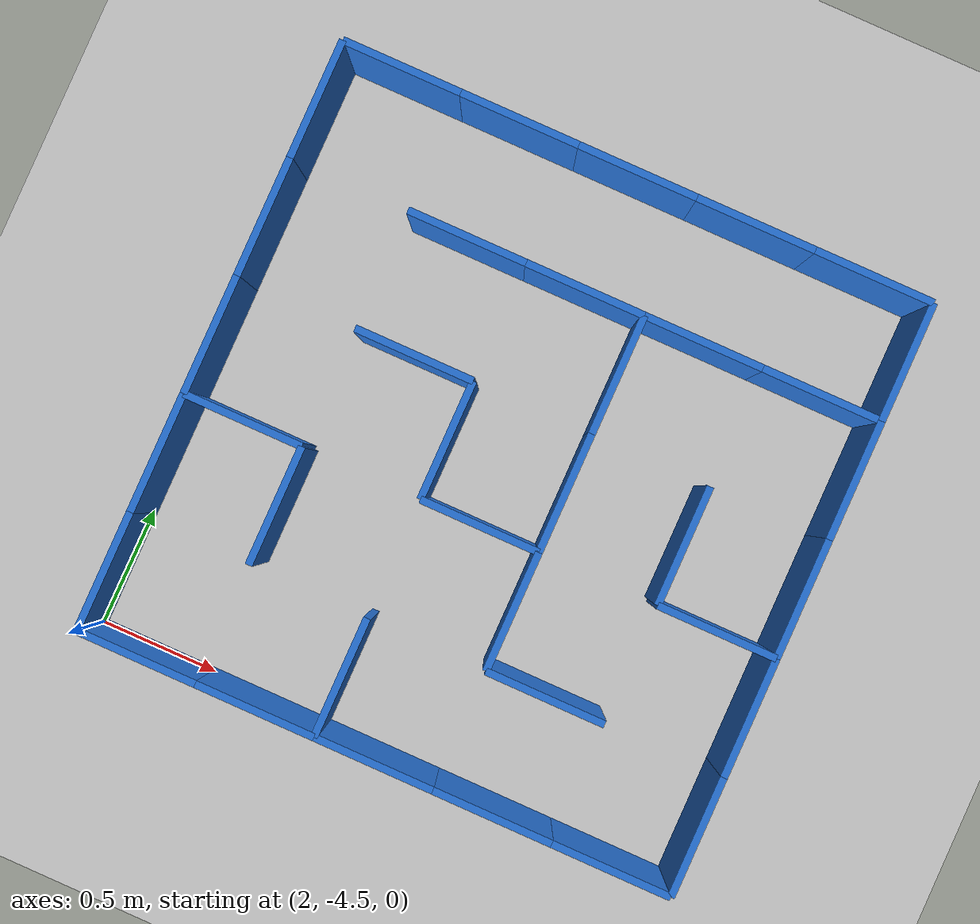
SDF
<?xml version="1.0" ?>
<sdf version="1.10">
<world name="nhom8_mecanum">
  <physics name="1ms" type="ignored">
    <max_step_size>0.001</max_step_size>
    <real_time_factor>1.0</real_time_factor>
  </physics>
  <plugin filename="gz-sim-physics-system"   name="gz::sim::systems::Physics"/>
  <plugin filename="gz-sim-user-commands-system" name="gz::sim::systems::UserCommands"/>
  <plugin filename="gz-sim-scene-broadcaster-system" name="gz::sim::systems::SceneBroadcaster"/>
  <plugin filename="gz-sim-sensors-system"   name="gz::sim::systems::Sensors">
    <render_engine>ogre2</render_engine>
  </plugin>

  <light type="directional" name="sun">
    <cast_shadows>true</cast_shadows>
    <pose>0 0 10 0 0 0</pose>
    <diffuse>1 1 1 1</diffuse>
    <specular>0.5 0.5 0.5 1</specular>
    <attenuation><range>1000</range><constant>0.9</constant>
      <linear>0.01</linear><quadratic>0.001</quadratic></attenuation>
    <direction>-0.5 0.1 -0.9</direction>
  </light>

  <model name="ground_plane">
    <static>true</static>
    <link name="link">
      <collision name="collision">
        <geometry><plane><normal>0 0 1</normal><size>50 50</size></plane></geometry>
        <surface><friction><ode><mu>40</mu></ode></friction></surface>
      </collision>
      <visual name="visual">
        <geometry><plane><normal>0 0 1</normal><size>50 50</size></plane></geometry>
        <material>
          <ambient>0.8 0.8 0.8 1</ambient><diffuse>0.8 0.8 0.8 1</diffuse>
          <specular>0.8 0.8 0.8 1</specular>
        </material>
      </visual>
    </link>
  </model>

  <!--  MÊ CUNG 5×5  ô 0.5m×0.5m  (xoay 90° CCW)            -->
  <!--  Tâm xoay: X=3.25  Y=-3.25                            -->
  <!--  Start (5,3): world (4.25, -3.25)                      -->
  <!--  Goal  (1,3): world (2.25, -3.25)                      -->
  <!-- ── Horizontal walls (hw) ── now rotated, yaw=1.5708 ── -->

    <model name="hw_0_0">
      <static>true</static>
      <pose>2.0000 -4.2500 0.2000 0 0 1.5708</pose>
      <link name="link">
        <collision name="col">
          <geometry><box><size>0.5000 0.0300 0.4000</size></box></geometry>
        </collision>
        <visual name="vis">
          <geometry><box><size>0.5000 0.0300 0.4000</size></box></geometry>
          <material><ambient>0.15 0.45 0.85 1</ambient><diffuse>0.15 0.45 0.85 1</diffuse></material>
        </visual>
      </link>
    </model>

    <model name="hw_0_1">
      <static>true</static>
      <pose>2.0000 -3.7500 0.2000 0 0 1.5708</pose>
      <link name="link">
        <collision name="col">
          <geometry><box><size>0.5000 0.0300 0.4000</size></box></geometry>
        </collision>
        <visual name="vis">
          <geometry><box><size>0.5000 0.0300 0.4000</size></box></geometry>
          <material><ambient>0.15 0.45 0.85 1</ambient><diffuse>0.15 0.45 0.85 1</diffuse></material>
        </visual>
      </link>
    </model>

    <model name="hw_0_2">
      <static>true</static>
      <pose>2.0000 -3.2500 0.2000 0 0 1.5708</pose>
      <link name="link">
        <collision name="col">
          <geometry><box><size>0.5000 0.0300 0.4000</size></box></geometry>
        </collision>
        <visual name="vis">
          <geometry><box><size>0.5000 0.0300 0.4000</size></box></geometry>
          <material><ambient>0.15 0.45 0.85 1</ambient><diffuse>0.15 0.45 0.85 1</diffuse></material>
        </visual>
      </link>
    </model>

    <model name="hw_5_2">
      <static>true</static>
      <pose>4.5000 -3.2500 0.2000 0 0 1.5708</pose>
      <link name="link">
        <collision name="col">
          <geometry><box><size>0.5000 0.0300 0.4000</size></box></geometry>
        </collision>
        <visual name="vis">
          <geometry><box><size>0.5000 0.0300 0.4000</size></box></geometry>
          <material><ambient>0.15 0.45 0.85 1</ambient><diffuse>0.15 0.45 0.85 1</diffuse></material>
        </visual>
      </link>
    </model>

    <model name="hw_0_3">
      <static>true</static>
      <pose>2.0000 -2.7500 0.2000 0 0 1.5708</pose>
      <link name="link">
        <collision name="col">
          <geometry><box><size>0.5000 0.0300 0.4000</size></box></geometry>
        </collision>
        <visual name="vis">
          <geometry><box><size>0.5000 0.0300 0.4000</size></box></geometry>
          <material><ambient>0.15 0.45 0.85 1</ambient><diffuse>0.15 0.45 0.85 1</diffuse></material>
        </visual>
      </link>
    </model>

    <model name="hw_0_4">
      <static>true</static>
      <pose>2.0000 -2.2500 0.2000 0 0 1.5708</pose>
      <link name="link">
        <collision name="col">
          <geometry><box><size>0.5000 0.0300 0.4000</size></box></geometry>
        </collision>
        <visual name="vis">
          <geometry><box><size>0.5000 0.0300 0.4000</size></box></geometry>
          <material><ambient>0.15 0.45 0.85 1</ambient><diffuse>0.15 0.45 0.85 1</diffuse></material>
        </visual>
      </link>
    </model>

    <model name="hw_1_1">
      <static>true</static>
      <pose>2.5000 -3.7500 0.2000 0 0 1.5708</pose>
      <link name="link">
        <collision name="col">
          <geometry><box><size>0.5000 0.0300 0.4000</size></box></geometry>
        </collision>
        <visual name="vis">
          <geometry><box><size>0.5000 0.0300 0.4000</size></box></geometry>
          <material><ambient>0.15 0.45 0.85 1</ambient><diffuse>0.15 0.45 0.85 1</diffuse></material>
        </visual>
      </link>
    </model>

    <model name="hw_2_0">
      <static>true</static>
      <pose>3.0000 -4.2500 0.2000 0 0 1.5708</pose>
      <link name="link">
        <collision name="col">
          <geometry><box><size>0.5000 0.0300 0.4000</size></box></geometry>
        </collision>
        <visual name="vis">
          <geometry><box><size>0.5000 0.0300 0.4000</size></box></geometry>
          <material><ambient>0.15 0.45 0.85 1</ambient><diffuse>0.15 0.45 0.85 1</diffuse></material>
        </visual>
      </link>
    </model>

    <model name="hw_2_2">
      <static>true</static>
      <pose>3.0000 -3.2500 0.2000 0 0 1.5708</pose>
      <link name="link">
        <collision name="col">
          <geometry><box><size>0.5000 0.0300 0.4000</size></box></geometry>
        </collision>
        <visual name="vis">
          <geometry><box><size>0.5000 0.0300 0.4000</size></box></geometry>
          <material><ambient>0.15 0.45 0.85 1</ambient><diffuse>0.15 0.45 0.85 1</diffuse></material>
        </visual>
      </link>
    </model>

    <model name="hw_3_1">
      <static>true</static>
      <pose>3.5000 -3.7500 0.2000 0 0 1.5708</pose>
      <link name="link">
        <collision name="col">
          <geometry><box><size>0.5000 0.0300 0.4000</size></box></geometry>
        </collision>
        <visual name="vis">
          <geometry><box><size>0.5000 0.0300 0.4000</size></box></geometry>
          <material><ambient>0.15 0.45 0.85 1</ambient><diffuse>0.15 0.45 0.85 1</diffuse></material>
        </visual>
      </link>
    </model>

    <model name="hw_3_2">
      <static>true</static>
      <pose>3.5000 -3.2500 0.2000 0 0 1.5708</pose>
      <link name="link">
        <collision name="col">
          <geometry><box><size>0.5000 0.0300 0.4000</size></box></geometry>
        </collision>
        <visual name="vis">
          <geometry><box><size>0.5000 0.0300 0.4000</size></box></geometry>
          <material><ambient>0.15 0.45 0.85 1</ambient><diffuse>0.15 0.45 0.85 1</diffuse></material>
        </visual>
      </link>
    </model>

    <model name="hw_3_3">
      <static>true</static>
      <pose>3.5000 -2.7500 0.2000 0 0 1.5708</pose>
      <link name="link">
        <collision name="col">
          <geometry><box><size>0.5000 0.0300 0.4000</size></box></geometry>
        </collision>
        <visual name="vis">
          <geometry><box><size>0.5000 0.0300 0.4000</size></box></geometry>
          <material><ambient>0.15 0.45 0.85 1</ambient><diffuse>0.15 0.45 0.85 1</diffuse></material>
        </visual>
      </link>
    </model>

    <model name="hw_4_2">
      <static>true</static>
      <pose>4.0000 -3.2500 0.2000 0 0 1.5708</pose>
      <link name="link">
        <collision name="col">
          <geometry><box><size>0.5000 0.0300 0.4000</size></box></geometry>
        </collision>
        <visual name="vis">
          <geometry><box><size>0.5000 0.0300 0.4000</size></box></geometry>
          <material><ambient>0.15 0.45 0.85 1</ambient><diffuse>0.15 0.45 0.85 1</diffuse></material>
        </visual>
      </link>
    </model>

    <model name="hw_5_0">
      <static>true</static>
      <pose>4.5000 -4.2500 0.2000 0 0 1.5708</pose>
      <link name="link">
        <collision name="col">
          <geometry><box><size>0.5000 0.0300 0.4000</size></box></geometry>
        </collision>
        <visual name="vis">
          <geometry><box><size>0.5000 0.0300 0.4000</size></box></geometry>
          <material><ambient>0.15 0.45 0.85 1</ambient><diffuse>0.15 0.45 0.85 1</diffuse></material>
        </visual>
      </link>
    </model>

    <model name="hw_5_1">
      <static>true</static>
      <pose>4.5000 -3.7500 0.2000 0 0 1.5708</pose>
      <link name="link">
        <collision name="col">
          <geometry><box><size>0.5000 0.0300 0.4000</size></box></geometry>
        </collision>
        <visual name="vis">
          <geometry><box><size>0.5000 0.0300 0.4000</size></box></geometry>
          <material><ambient>0.15 0.45 0.85 1</ambient><diffuse>0.15 0.45 0.85 1</diffuse></material>
        </visual>
      </link>
    </model>

    <model name="hw_5_3">
      <static>true</static>
      <pose>4.5000 -2.7500 0.2000 0 0 1.5708</pose>
      <link name="link">
        <collision name="col">
          <geometry><box><size>0.5000 0.0300 0.4000</size></box></geometry>
        </collision>
        <visual name="vis">
          <geometry><box><size>0.5000 0.0300 0.4000</size></box></geometry>
          <material><ambient>0.15 0.45 0.85 1</ambient><diffuse>0.15 0.45 0.85 1</diffuse></material>
        </visual>
      </link>
    </model>

    <model name="hw_5_4">
      <static>true</static>
      <pose>4.5000 -2.2500 0.2000 0 0 1.5708</pose>
      <link name="link">
        <collision name="col">
          <geometry><box><size>0.5000 0.0300 0.4000</size></box></geometry>
        </collision>
        <visual name="vis">
          <geometry><box><size>0.5000 0.0300 0.4000</size></box></geometry>
          <material><ambient>0.15 0.45 0.85 1</ambient><diffuse>0.15 0.45 0.85 1</diffuse></material>
        </visual>
      </link>
    </model>

    <!-- ── Vertical walls (vw) ── now rotated, yaw=1.5708 ── -->

    <model name="vw_0_0">
      <static>true</static>
      <pose>2.2500 -4.5000 0.2000 0 0 1.5708</pose>
      <link name="link">
        <collision name="col">
          <geometry><box><size>0.0300 0.5000 0.4000</size></box></geometry>
        </collision>
        <visual name="vis">
          <geometry><box><size>0.0300 0.5000 0.4000</size></box></geometry>
          <material><ambient>0.15 0.45 0.85 1</ambient><diffuse>0.15 0.45 0.85 1</diffuse></material>
        </visual>
      </link>
    </model>

    <model name="vw_0_2">
      <static>true</static>
      <pose>2.2500 -3.5000 0.2000 0 0 1.5708</pose>
      <link name="link">
        <collision name="col">
          <geometry><box><size>0.0300 0.5000 0.4000</size></box></geometry>
        </collision>
        <visual name="vis">
          <geometry><box><size>0.0300 0.5000 0.4000</size></box></geometry>
          <material><ambient>0.15 0.45 0.85 1</ambient><diffuse>0.15 0.45 0.85 1</diffuse></material>
        </visual>
      </link>
    </model>

    <model name="vw_0_5">
      <static>true</static>
      <pose>2.2500 -2.0000 0.2000 0 0 1.5708</pose>
      <link name="link">
        <collision name="col">
          <geometry><box><size>0.0300 0.5000 0.4000</size></box></geometry>
        </collision>
        <visual name="vis">
          <geometry><box><size>0.0300 0.5000 0.4000</size></box></geometry>
          <material><ambient>0.15 0.45 0.85 1</ambient><diffuse>0.15 0.45 0.85 1</diffuse></material>
        </visual>
      </link>
    </model>

    <model name="vw_1_0">
      <static>true</static>
      <pose>2.7500 -4.5000 0.2000 0 0 1.5708</pose>
      <link name="link">
        <collision name="col">
          <geometry><box><size>0.0300 0.5000 0.4000</size></box></geometry>
        </collision>
        <visual name="vis">
          <geometry><box><size>0.0300 0.5000 0.4000</size></box></geometry>
          <material><ambient>0.15 0.45 0.85 1</ambient><diffuse>0.15 0.45 0.85 1</diffuse></material>
        </visual>
      </link>
    </model>

    <model name="vw_1_3">
      <static>true</static>
      <pose>2.7500 -3.0000 0.2000 0 0 1.5708</pose>
      <link name="link">
        <collision name="col">
          <geometry><box><size>0.0300 0.5000 0.4000</size></box></geometry>
        </collision>
        <visual name="vis">
          <geometry><box><size>0.0300 0.5000 0.4000</size></box></geometry>
          <material><ambient>0.15 0.45 0.85 1</ambient><diffuse>0.15 0.45 0.85 1</diffuse></material>
        </visual>
      </link>
    </model>

    <model name="vw_1_4">
      <static>true</static>
      <pose>2.7500 -2.5000 0.2000 0 0 1.5708</pose>
      <link name="link">
        <collision name="col">
          <geometry><box><size>0.0300 0.5000 0.4000</size></box></geometry>
        </collision>
        <visual name="vis">
          <geometry><box><size>0.0300 0.5000 0.4000</size></box></geometry>
          <material><ambient>0.15 0.45 0.85 1</ambient><diffuse>0.15 0.45 0.85 1</diffuse></material>
        </visual>
      </link>
    </model>

    <model name="vw_1_5">
      <static>true</static>
      <pose>2.7500 -2.0000 0.2000 0 0 1.5708</pose>
      <link name="link">
        <collision name="col">
          <geometry><box><size>0.0300 0.5000 0.4000</size></box></geometry>
        </collision>
        <visual name="vis">
          <geometry><box><size>0.0300 0.5000 0.4000</size></box></geometry>
          <material><ambient>0.15 0.45 0.85 1</ambient><diffuse>0.15 0.45 0.85 1</diffuse></material>
        </visual>
      </link>
    </model>

    <model name="vw_2_0">
      <static>true</static>
      <pose>3.2500 -4.5000 0.2000 0 0 1.5708</pose>
      <link name="link">
        <collision name="col">
          <geometry><box><size>0.0300 0.5000 0.4000</size></box></geometry>
        </collision>
        <visual name="vis">
          <geometry><box><size>0.0300 0.5000 0.4000</size></box></geometry>
          <material><ambient>0.15 0.45 0.85 1</ambient><diffuse>0.15 0.45 0.85 1</diffuse></material>
        </visual>
      </link>
    </model>

    <model name="vw_2_2">
      <static>true</static>
      <pose>3.2500 -3.5000 0.2000 0 0 1.5708</pose>
      <link name="link">
        <collision name="col">
          <geometry><box><size>0.0300 0.5000 0.4000</size></box></geometry>
        </collision>
        <visual name="vis">
          <geometry><box><size>0.0300 0.5000 0.4000</size></box></geometry>
          <material><ambient>0.15 0.45 0.85 1</ambient><diffuse>0.15 0.45 0.85 1</diffuse></material>
        </visual>
      </link>
    </model>

    <model name="vw_2_4">
      <static>true</static>
      <pose>3.2500 -2.5000 0.2000 0 0 1.5708</pose>
      <link name="link">
        <collision name="col">
          <geometry><box><size>0.0300 0.5000 0.4000</size></box></geometry>
        </collision>
        <visual name="vis">
          <geometry><box><size>0.0300 0.5000 0.4000</size></box></geometry>
          <material><ambient>0.15 0.45 0.85 1</ambient><diffuse>0.15 0.45 0.85 1</diffuse></material>
        </visual>
      </link>
    </model>

    <model name="vw_2_5">
      <static>true</static>
      <pose>3.2500 -2.0000 0.2000 0 0 1.5708</pose>
      <link name="link">
        <collision name="col">
          <geometry><box><size>0.0300 0.5000 0.4000</size></box></geometry>
        </collision>
        <visual name="vis">
          <geometry><box><size>0.0300 0.5000 0.4000</size></box></geometry>
          <material><ambient>0.15 0.45 0.85 1</ambient><diffuse>0.15 0.45 0.85 1</diffuse></material>
        </visual>
      </link>
    </model>

    <model name="vw_3_0">
      <static>true</static>
      <pose>3.7500 -4.5000 0.2000 0 0 1.5708</pose>
      <link name="link">
        <collision name="col">
          <geometry><box><size>0.0300 0.5000 0.4000</size></box></geometry>
        </collision>
        <visual name="vis">
          <geometry><box><size>0.0300 0.5000 0.4000</size></box></geometry>
          <material><ambient>0.15 0.45 0.85 1</ambient><diffuse>0.15 0.45 0.85 1</diffuse></material>
        </visual>
      </link>
    </model>

    <model name="vw_3_1">
      <static>true</static>
      <pose>3.7500 -4.0000 0.2000 0 0 1.5708</pose>
      <link name="link">
        <collision name="col">
          <geometry><box><size>0.0300 0.5000 0.4000</size></box></geometry>
        </collision>
        <visual name="vis">
          <geometry><box><size>0.0300 0.5000 0.4000</size></box></geometry>
          <material><ambient>0.15 0.45 0.85 1</ambient><diffuse>0.15 0.45 0.85 1</diffuse></material>
        </visual>
      </link>
    </model>

    <model name="vw_3_4">
      <static>true</static>
      <pose>3.7500 -2.5000 0.2000 0 0 1.5708</pose>
      <link name="link">
        <collision name="col">
          <geometry><box><size>0.0300 0.5000 0.4000</size></box></geometry>
        </collision>
        <visual name="vis">
          <geometry><box><size>0.0300 0.5000 0.4000</size></box></geometry>
          <material><ambient>0.15 0.45 0.85 1</ambient><diffuse>0.15 0.45 0.85 1</diffuse></material>
        </visual>
      </link>
    </model>

    <model name="vw_3_5">
      <static>true</static>
      <pose>3.7500 -2.0000 0.2000 0 0 1.5708</pose>
      <link name="link">
        <collision name="col">
          <geometry><box><size>0.0300 0.5000 0.4000</size></box></geometry>
        </collision>
        <visual name="vis">
          <geometry><box><size>0.0300 0.5000 0.4000</size></box></geometry>
          <material><ambient>0.15 0.45 0.85 1</ambient><diffuse>0.15 0.45 0.85 1</diffuse></material>
        </visual>
      </link>
    </model>

    <model name="vw_4_0">
      <static>true</static>
      <pose>4.2500 -4.5000 0.2000 0 0 1.5708</pose>
      <link name="link">
        <collision name="col">
          <geometry><box><size>0.0300 0.5000 0.4000</size></box></geometry>
        </collision>
        <visual name="vis">
          <geometry><box><size>0.0300 0.5000 0.4000</size></box></geometry>
          <material><ambient>0.15 0.45 0.85 1</ambient><diffuse>0.15 0.45 0.85 1</diffuse></material>
        </visual>
      </link>
    </model>

    <model name="vw_4_2">
      <static>true</static>
      <pose>4.2500 -3.5000 0.2000 0 0 1.5708</pose>
      <link name="link">
        <collision name="col">
          <geometry><box><size>0.0300 0.5000 0.4000</size></box></geometry>
        </collision>
        <visual name="vis">
          <geometry><box><size>0.0300 0.5000 0.4000</size></box></geometry>
          <material><ambient>0.15 0.45 0.85 1</ambient><diffuse>0.15 0.45 0.85 1</diffuse></material>
        </visual>
      </link>
    </model>

    <model name="vw_4_4">
      <static>true</static>
      <pose>4.2500 -2.5000 0.2000 0 0 1.5708</pose>
      <link name="link">
        <collision name="col">
          <geometry><box><size>0.0300 0.5000 0.4000</size></box></geometry>
        </collision>
        <visual name="vis">
          <geometry><box><size>0.0300 0.5000 0.4000</size></box></geometry>
          <material><ambient>0.15 0.45 0.85 1</ambient><diffuse>0.15 0.45 0.85 1</diffuse></material>
        </visual>
      </link>
    </model>

    <model name="vw_4_5">
      <static>true</static>
      <pose>4.2500 -2.0000 0.2000 0 0 1.5708</pose>
      <link name="link">
        <collision name="col">
          <geometry><box><size>0.0300 0.5000 0.4000</size></box></geometry>
        </collision>
        <visual name="vis">
          <geometry><box><size>0.0300 0.5000 0.4000</size></box></geometry>
          <material><ambient>0.15 0.45 0.85 1</ambient><diffuse>0.15 0.45 0.85 1</diffuse></material>
        </visual>
      </link>
    </model>

    <!-- ── Floor, Start, Goal ── -->

    <model name="floor">
      <static>true</static>
      <pose>3.2500 -3.2500 -0.02 0 0 1.5708</pose>
      <link name="link">
        <collision name="col">
          <geometry><box><size>2.50 2.50 0.03</size></box></geometry>
        </collision>
        <visual name="vis">
          <geometry><box><size>2.50 2.50 0.03</size></box></geometry>
          <material><ambient>0.87 0.87 0.82 1</ambient><diffuse>0.87 0.87 0.82 1</diffuse></material>
        </visual>
      </link>
    </model>

    <!-- Start: original (3.25,-2.25) rotated -> (2.25,-3.25) -->
    <!-- Goal: original (3.25,-4.25) rotated -> (4.25,-3.25) -->
</world>
</sdf>
